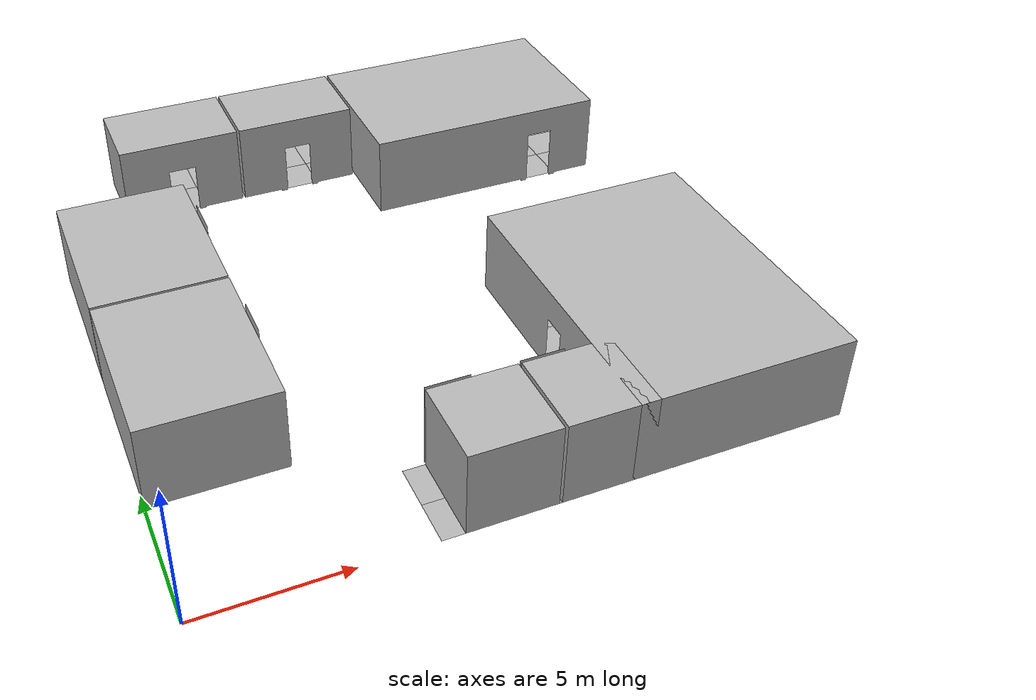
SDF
<sdf version="1.6">
 <world name="default">
  <model name="PublicBathroomA">
   <static>true</static>
   <pose>9.0
    3.0
    0
    0
    0
    0</pose>
   <link name="link">
    <collision name="right_of_door">
     <pose>0.63
        0.05
        1.5
        0
        0
        0</pose>
     <geometry><box><size>1.74
            0.1
            3.0</size></box></geometry>
    </collision>
    <collision name="left_of_door">
     <pose>-1.3800000000000001
        0.05
        1.5
        0
        0
        0</pose>
     <geometry><box><size>0.24
            0.1
            3.0</size></box></geometry>
    </collision>
    <collision name="right">
     <pose>1.55
        -1.5
        1.5
        0
        0
        0</pose>
     <geometry><box><size>0.1
            3.0
            3.0</size></box></geometry>
    </collision>
    <collision name="left">
     <pose>-1.55
        -1.5
        1.5
        0
        0
        0</pose>
     <geometry><box><size>0.1
            3.0
            3.0</size></box></geometry>
    </collision>
    <collision name="back">
     <pose>0.0
        -3.05
        1.5
        0
        0
        0</pose>
     <geometry><box><size>3.0
            0.1
            3.0</size></box></geometry>
    </collision>
    <visual name="visual">
     <geometry><mesh><uri>file://media/meshes/bathroom.obj</uri><scale>0.01 0.01 0.01</scale></mesh></geometry>
    </visual>
    <visual name="floor_0_-1">
     <pose>0.0
          -1.5
          0
          0
          0
          0</pose>
     <geometry><mesh><uri>file://media/meshes/tile.obj</uri><scale>0.01 0.01 0.01</scale></mesh></geometry>
    </visual>
    <visual name="floor_0_0">
     <geometry><mesh><uri>file://media/meshes/tile.obj</uri><scale>0.01 0.01 0.01</scale></mesh></geometry>
    </visual>
    <visual name="floor_1_-1">
     <pose>1.5
          -1.5
          0
          0
          0
          0</pose>
     <geometry><mesh><uri>file://media/meshes/tile.obj</uri><scale>0.01 0.01 0.01</scale></mesh></geometry>
    </visual>
    <visual name="floor_1_0">
     <pose>1.5
          0.0
          0
          0
          0
          0</pose>
     <geometry><mesh><uri>file://media/meshes/tile.obj</uri><scale>0.01 0.01 0.01</scale></mesh></geometry>
    </visual>
   </link>
  </model>
  <model name="PublicBathroomB">
   <static>true</static>
   <pose>12.1
    3.0
    0
    0
    0
    0</pose>
   <link name="link">
    <collision name="right_of_door">
     <pose>0.63
        0.05
        1.5
        0
        0
        0</pose>
     <geometry><box><size>1.74
            0.1
            3.0</size></box></geometry>
    </collision>
    <collision name="left_of_door">
     <pose>-1.3800000000000001
        0.05
        1.5
        0
        0
        0</pose>
     <geometry><box><size>0.24
            0.1
            3.0</size></box></geometry>
    </collision>
    <collision name="right">
     <pose>1.55
        -1.5
        1.5
        0
        0
        0</pose>
     <geometry><box><size>0.1
            3.0
            3.0</size></box></geometry>
    </collision>
    <collision name="left">
     <pose>-1.55
        -1.5
        1.5
        0
        0
        0</pose>
     <geometry><box><size>0.1
            3.0
            3.0</size></box></geometry>
    </collision>
    <collision name="back">
     <pose>0.0
        -3.05
        1.5
        0
        0
        0</pose>
     <geometry><box><size>3.0
            0.1
            3.0</size></box></geometry>
    </collision>
    <visual name="visual">
     <geometry><mesh><uri>file://media/meshes/bathroom.obj</uri><scale>0.01 0.01 0.01</scale></mesh></geometry>
    </visual>
    <visual name="floor_0_-1">
     <pose>0.0
          -1.5
          0
          0
          0
          0</pose>
     <geometry><mesh><uri>file://media/meshes/tile.obj</uri><scale>0.01 0.01 0.01</scale></mesh></geometry>
    </visual>
    <visual name="floor_0_0">
     <geometry><mesh><uri>file://media/meshes/tile.obj</uri><scale>0.01 0.01 0.01</scale></mesh></geometry>
    </visual>
    <visual name="floor_1_-1">
     <pose>1.5
          -1.5
          0
          0
          0
          0</pose>
     <geometry><mesh><uri>file://media/meshes/tile.obj</uri><scale>0.01 0.01 0.01</scale></mesh></geometry>
    </visual>
    <visual name="floor_1_0">
     <pose>1.5
          0.0
          0
          0
          0
          0</pose>
     <geometry><mesh><uri>file://media/meshes/tile.obj</uri><scale>0.01 0.01 0.01</scale></mesh></geometry>
    </visual>
   </link>
  </model>
  <model name="PublicCafe">
   <static>true</static>
   <pose>13.7
    6.0
    0
    0
    0
    1.5707963267948966</pose>
   <link name="link">
    <collision name="right_of_door">
     <pose>2.13
        0.05
        1.5
        0
        0
        0</pose>
     <geometry><box><size>4.74
            0.1
            3.0</size></box></geometry>
    </collision>
    <collision name="left_of_door">
     <pose>-3.63
        0.05
        1.5
        0
        0
        0</pose>
     <geometry><box><size>4.74
            0.1
            3.0</size></box></geometry>
    </collision>
    <collision name="right">
     <pose>4.55
        -3.75
        1.5
        0
        0
        0</pose>
     <geometry><box><size>0.1
            7.5
            3.0</size></box></geometry>
    </collision>
    <collision name="left">
     <pose>-6.05
        -3.75
        1.5
        0
        0
        0</pose>
     <geometry><box><size>0.1
            7.5
            3.0</size></box></geometry>
    </collision>
    <collision name="back">
     <pose>-0.75
        -7.55
        1.5
        0
        0
        0</pose>
     <geometry><box><size>10.5
            0.1
            3.0</size></box></geometry>
    </collision>
    <visual name="visual">
     <geometry>
      <mesh><uri>file://media/meshes/refreshment_area.obj</uri><scale>0.01 0.01 0.01</scale></mesh>
     </geometry>
    </visual>
    <visual name="floor_-3_-4">
     <pose>-4.5
          -6.0
          0
          0
          0
          0</pose>
     <geometry><mesh><uri>file://media/meshes/tile.obj</uri><scale>0.01 0.01 0.01</scale></mesh></geometry>
    </visual>
    <visual name="floor_-3_-3">
     <pose>-4.5
          -4.5
          0
          0
          0
          0</pose>
     <geometry><mesh><uri>file://media/meshes/tile.obj</uri><scale>0.01 0.01 0.01</scale></mesh></geometry>
    </visual>
    <visual name="floor_-3_-2">
     <pose>-4.5
          -3.0
          0
          0
          0
          0</pose>
     <geometry><mesh><uri>file://media/meshes/tile.obj</uri><scale>0.01 0.01 0.01</scale></mesh></geometry>
    </visual>
    <visual name="floor_-3_-1">
     <pose>-4.5
          -1.5
          0
          0
          0
          0</pose>
     <geometry><mesh><uri>file://media/meshes/tile.obj</uri><scale>0.01 0.01 0.01</scale></mesh></geometry>
    </visual>
    <visual name="floor_-3_0">
     <pose>-4.5
          0.0
          0
          0
          0
          0</pose>
     <geometry><mesh><uri>file://media/meshes/tile.obj</uri><scale>0.01 0.01 0.01</scale></mesh></geometry>
    </visual>
    <visual name="floor_-2_-4">
     <pose>-3.0
          -6.0
          0
          0
          0
          0</pose>
     <geometry><mesh><uri>file://media/meshes/tile.obj</uri><scale>0.01 0.01 0.01</scale></mesh></geometry>
    </visual>
    <visual name="floor_-2_-3">
     <pose>-3.0
          -4.5
          0
          0
          0
          0</pose>
     <geometry><mesh><uri>file://media/meshes/tile.obj</uri><scale>0.01 0.01 0.01</scale></mesh></geometry>
    </visual>
    <visual name="floor_-2_-2">
     <pose>-3.0
          -3.0
          0
          0
          0
          0</pose>
     <geometry><mesh><uri>file://media/meshes/tile.obj</uri><scale>0.01 0.01 0.01</scale></mesh></geometry>
    </visual>
    <visual name="floor_-2_-1">
     <pose>-3.0
          -1.5
          0
          0
          0
          0</pose>
     <geometry><mesh><uri>file://media/meshes/tile.obj</uri><scale>0.01 0.01 0.01</scale></mesh></geometry>
    </visual>
    <visual name="floor_-2_0">
     <pose>-3.0
          0.0
          0
          0
          0
          0</pose>
     <geometry><mesh><uri>file://media/meshes/tile.obj</uri><scale>0.01 0.01 0.01</scale></mesh></geometry>
    </visual>
    <visual name="floor_-1_-4">
     <pose>-1.5
          -6.0
          0
          0
          0
          0</pose>
     <geometry><mesh><uri>file://media/meshes/tile.obj</uri><scale>0.01 0.01 0.01</scale></mesh></geometry>
    </visual>
    <visual name="floor_-1_-3">
     <pose>-1.5
          -4.5
          0
          0
          0
          0</pose>
     <geometry><mesh><uri>file://media/meshes/tile.obj</uri><scale>0.01 0.01 0.01</scale></mesh></geometry>
    </visual>
    <visual name="floor_-1_-2">
     <pose>-1.5
          -3.0
          0
          0
          0
          0</pose>
     <geometry><mesh><uri>file://media/meshes/tile.obj</uri><scale>0.01 0.01 0.01</scale></mesh></geometry>
    </visual>
    <visual name="floor_-1_-1">
     <pose>-1.5
          -1.5
          0
          0
          0
          0</pose>
     <geometry><mesh><uri>file://media/meshes/tile.obj</uri><scale>0.01 0.01 0.01</scale></mesh></geometry>
    </visual>
    <visual name="floor_-1_0">
     <pose>-1.5
          0.0
          0
          0
          0
          0</pose>
     <geometry><mesh><uri>file://media/meshes/tile.obj</uri><scale>0.01 0.01 0.01</scale></mesh></geometry>
    </visual>
    <visual name="floor_0_-4">
     <pose>0.0
          -6.0
          0
          0
          0
          0</pose>
     <geometry><mesh><uri>file://media/meshes/tile.obj</uri><scale>0.01 0.01 0.01</scale></mesh></geometry>
    </visual>
    <visual name="floor_0_-3">
     <pose>0.0
          -4.5
          0
          0
          0
          0</pose>
     <geometry><mesh><uri>file://media/meshes/tile.obj</uri><scale>0.01 0.01 0.01</scale></mesh></geometry>
    </visual>
    <visual name="floor_0_-2">
     <pose>0.0
          -3.0
          0
          0
          0
          0</pose>
     <geometry><mesh><uri>file://media/meshes/tile.obj</uri><scale>0.01 0.01 0.01</scale></mesh></geometry>
    </visual>
    <visual name="floor_0_-1">
     <pose>0.0
          -1.5
          0
          0
          0
          0</pose>
     <geometry><mesh><uri>file://media/meshes/tile.obj</uri><scale>0.01 0.01 0.01</scale></mesh></geometry>
    </visual>
    <visual name="floor_0_0">
     <geometry><mesh><uri>file://media/meshes/tile.obj</uri><scale>0.01 0.01 0.01</scale></mesh></geometry>
    </visual>
    <visual name="floor_1_-4">
     <pose>1.5
          -6.0
          0
          0
          0
          0</pose>
     <geometry><mesh><uri>file://media/meshes/tile.obj</uri><scale>0.01 0.01 0.01</scale></mesh></geometry>
    </visual>
    <visual name="floor_1_-3">
     <pose>1.5
          -4.5
          0
          0
          0
          0</pose>
     <geometry><mesh><uri>file://media/meshes/tile.obj</uri><scale>0.01 0.01 0.01</scale></mesh></geometry>
    </visual>
    <visual name="floor_1_-2">
     <pose>1.5
          -3.0
          0
          0
          0
          0</pose>
     <geometry><mesh><uri>file://media/meshes/tile.obj</uri><scale>0.01 0.01 0.01</scale></mesh></geometry>
    </visual>
    <visual name="floor_1_-1">
     <pose>1.5
          -1.5
          0
          0
          0
          0</pose>
     <geometry><mesh><uri>file://media/meshes/tile.obj</uri><scale>0.01 0.01 0.01</scale></mesh></geometry>
    </visual>
    <visual name="floor_1_0">
     <pose>1.5
          0.0
          0
          0
          0
          0</pose>
     <geometry><mesh><uri>file://media/meshes/tile.obj</uri><scale>0.01 0.01 0.01</scale></mesh></geometry>
    </visual>
    <visual name="floor_2_-4">
     <pose>3.0
          -6.0
          0
          0
          0
          0</pose>
     <geometry><mesh><uri>file://media/meshes/tile.obj</uri><scale>0.01 0.01 0.01</scale></mesh></geometry>
    </visual>
    <visual name="floor_2_-3">
     <pose>3.0
          -4.5
          0
          0
          0
          0</pose>
     <geometry><mesh><uri>file://media/meshes/tile.obj</uri><scale>0.01 0.01 0.01</scale></mesh></geometry>
    </visual>
    <visual name="floor_2_-2">
     <pose>3.0
          -3.0
          0
          0
          0
          0</pose>
     <geometry><mesh><uri>file://media/meshes/tile.obj</uri><scale>0.01 0.01 0.01</scale></mesh></geometry>
    </visual>
    <visual name="floor_2_-1">
     <pose>3.0
          -1.5
          0
          0
          0
          0</pose>
     <geometry><mesh><uri>file://media/meshes/tile.obj</uri><scale>0.01 0.01 0.01</scale></mesh></geometry>
    </visual>
    <visual name="floor_2_0">
     <pose>3.0
          0.0
          0
          0
          0
          0</pose>
     <geometry><mesh><uri>file://media/meshes/tile.obj</uri><scale>0.01 0.01 0.01</scale></mesh></geometry>
    </visual>
    <visual name="floor_3_-4">
     <pose>4.5
          -6.0
          0
          0
          0
          0</pose>
     <geometry><mesh><uri>file://media/meshes/tile.obj</uri><scale>0.01 0.01 0.01</scale></mesh></geometry>
    </visual>
    <visual name="floor_3_-3">
     <pose>4.5
          -4.5
          0
          0
          0
          0</pose>
     <geometry><mesh><uri>file://media/meshes/tile.obj</uri><scale>0.01 0.01 0.01</scale></mesh></geometry>
    </visual>
    <visual name="floor_3_-2">
     <pose>4.5
          -3.0
          0
          0
          0
          0</pose>
     <geometry><mesh><uri>file://media/meshes/tile.obj</uri><scale>0.01 0.01 0.01</scale></mesh></geometry>
    </visual>
    <visual name="floor_3_-1">
     <pose>4.5
          -1.5
          0
          0
          0
          0</pose>
     <geometry><mesh><uri>file://media/meshes/tile.obj</uri><scale>0.01 0.01 0.01</scale></mesh></geometry>
    </visual>
    <visual name="floor_3_0">
     <pose>4.5
          0.0
          0
          0
          0
          0</pose>
     <geometry><mesh><uri>file://media/meshes/tile.obj</uri><scale>0.01 0.01 0.01</scale></mesh></geometry>
    </visual>
   </link>
  </model>
  <model name="PublicMeetingRoomA">
   <static>true</static>
   <pose>18.0
    16.5
    0
    0
    0
    3.141592653589793</pose>
   <link name="link">
    <collision name="right_of_door">
     <pose>2.88
        0.05
        1.5
        0
        0
        0</pose>
     <geometry><box><size>6.24
            0.1
            3.0</size></box></geometry>
    </collision>
    <collision name="left_of_door">
     <pose>-2.13
        0.05
        1.5
        0
        0
        0</pose>
     <geometry><box><size>1.74
            0.1
            3.0</size></box></geometry>
    </collision>
    <collision name="right">
     <pose>6.05
        -3.0
        1.5
        0
        0
        0</pose>
     <geometry><box><size>0.1
            6.0
            3.0</size></box></geometry>
    </collision>
    <collision name="left">
     <pose>-3.05
        -3.0
        1.5
        0
        0
        0</pose>
     <geometry><box><size>0.1
            6.0
            3.0</size></box></geometry>
    </collision>
    <collision name="back">
     <pose>1.5
        -6.05
        1.5
        0
        0
        0</pose>
     <geometry><box><size>9.0
            0.1
            3.0</size></box></geometry>
    </collision>
    <visual name="visual">
     <geometry>
      <mesh><uri>file://media/meshes/meeting_room_large.obj</uri><scale>0.01 0.01 0.01</scale></mesh>
     </geometry>
    </visual>
    <visual name="floor_-1_-3">
     <pose>-1.5
          -4.5
          0
          0
          0
          0</pose>
     <geometry><mesh><uri>file://media/meshes/carpet.obj</uri><scale>0.01 0.01 0.01</scale></mesh></geometry>
    </visual>
    <visual name="floor_-1_-2">
     <pose>-1.5
          -3.0
          0
          0
          0
          0</pose>
     <geometry><mesh><uri>file://media/meshes/carpet.obj</uri><scale>0.01 0.01 0.01</scale></mesh></geometry>
    </visual>
    <visual name="floor_-1_-1">
     <pose>-1.5
          -1.5
          0
          0
          0
          0</pose>
     <geometry><mesh><uri>file://media/meshes/carpet.obj</uri><scale>0.01 0.01 0.01</scale></mesh></geometry>
    </visual>
    <visual name="floor_-1_0">
     <pose>-1.5
          0.0
          0
          0
          0
          0</pose>
     <geometry><mesh><uri>file://media/meshes/carpet.obj</uri><scale>0.01 0.01 0.01</scale></mesh></geometry>
    </visual>
    <visual name="floor_0_-3">
     <pose>0.0
          -4.5
          0
          0
          0
          0</pose>
     <geometry><mesh><uri>file://media/meshes/carpet.obj</uri><scale>0.01 0.01 0.01</scale></mesh></geometry>
    </visual>
    <visual name="floor_0_-2">
     <pose>0.0
          -3.0
          0
          0
          0
          0</pose>
     <geometry><mesh><uri>file://media/meshes/carpet.obj</uri><scale>0.01 0.01 0.01</scale></mesh></geometry>
    </visual>
    <visual name="floor_0_-1">
     <pose>0.0
          -1.5
          0
          0
          0
          0</pose>
     <geometry><mesh><uri>file://media/meshes/carpet.obj</uri><scale>0.01 0.01 0.01</scale></mesh></geometry>
    </visual>
    <visual name="floor_0_0">
     <geometry><mesh><uri>file://media/meshes/carpet.obj</uri><scale>0.01 0.01 0.01</scale></mesh></geometry>
    </visual>
    <visual name="floor_1_-3">
     <pose>1.5
          -4.5
          0
          0
          0
          0</pose>
     <geometry><mesh><uri>file://media/meshes/carpet.obj</uri><scale>0.01 0.01 0.01</scale></mesh></geometry>
    </visual>
    <visual name="floor_1_-2">
     <pose>1.5
          -3.0
          0
          0
          0
          0</pose>
     <geometry><mesh><uri>file://media/meshes/carpet.obj</uri><scale>0.01 0.01 0.01</scale></mesh></geometry>
    </visual>
    <visual name="floor_1_-1">
     <pose>1.5
          -1.5
          0
          0
          0
          0</pose>
     <geometry><mesh><uri>file://media/meshes/carpet.obj</uri><scale>0.01 0.01 0.01</scale></mesh></geometry>
    </visual>
    <visual name="floor_1_0">
     <pose>1.5
          0.0
          0
          0
          0
          0</pose>
     <geometry><mesh><uri>file://media/meshes/carpet.obj</uri><scale>0.01 0.01 0.01</scale></mesh></geometry>
    </visual>
    <visual name="floor_2_-3">
     <pose>3.0
          -4.5
          0
          0
          0
          0</pose>
     <geometry><mesh><uri>file://media/meshes/carpet.obj</uri><scale>0.01 0.01 0.01</scale></mesh></geometry>
    </visual>
    <visual name="floor_2_-2">
     <pose>3.0
          -3.0
          0
          0
          0
          0</pose>
     <geometry><mesh><uri>file://media/meshes/carpet.obj</uri><scale>0.01 0.01 0.01</scale></mesh></geometry>
    </visual>
    <visual name="floor_2_-1">
     <pose>3.0
          -1.5
          0
          0
          0
          0</pose>
     <geometry><mesh><uri>file://media/meshes/carpet.obj</uri><scale>0.01 0.01 0.01</scale></mesh></geometry>
    </visual>
    <visual name="floor_2_0">
     <pose>3.0
          0.0
          0
          0
          0
          0</pose>
     <geometry><mesh><uri>file://media/meshes/carpet.obj</uri><scale>0.01 0.01 0.01</scale></mesh></geometry>
    </visual>
    <visual name="floor_3_-3">
     <pose>4.5
          -4.5
          0
          0
          0
          0</pose>
     <geometry><mesh><uri>file://media/meshes/carpet.obj</uri><scale>0.01 0.01 0.01</scale></mesh></geometry>
    </visual>
    <visual name="floor_3_-2">
     <pose>4.5
          -3.0
          0
          0
          0
          0</pose>
     <geometry><mesh><uri>file://media/meshes/carpet.obj</uri><scale>0.01 0.01 0.01</scale></mesh></geometry>
    </visual>
    <visual name="floor_3_-1">
     <pose>4.5
          -1.5
          0
          0
          0
          0</pose>
     <geometry><mesh><uri>file://media/meshes/carpet.obj</uri><scale>0.01 0.01 0.01</scale></mesh></geometry>
    </visual>
    <visual name="floor_3_0">
     <pose>4.5
          0.0
          0
          0
          0
          0</pose>
     <geometry><mesh><uri>file://media/meshes/carpet.obj</uri><scale>0.01 0.01 0.01</scale></mesh></geometry>
    </visual>
    <visual name="floor_4_-3">
     <pose>6.0
          -4.5
          0
          0
          0
          0</pose>
     <geometry><mesh><uri>file://media/meshes/carpet.obj</uri><scale>0.01 0.01 0.01</scale></mesh></geometry>
    </visual>
    <visual name="floor_4_-2">
     <pose>6.0
          -3.0
          0
          0
          0
          0</pose>
     <geometry><mesh><uri>file://media/meshes/carpet.obj</uri><scale>0.01 0.01 0.01</scale></mesh></geometry>
    </visual>
    <visual name="floor_4_-1">
     <pose>6.0
          -1.5
          0
          0
          0
          0</pose>
     <geometry><mesh><uri>file://media/meshes/carpet.obj</uri><scale>0.01 0.01 0.01</scale></mesh></geometry>
    </visual>
    <visual name="floor_4_0">
     <pose>6.0
          0.0
          0
          0
          0
          0</pose>
     <geometry><mesh><uri>file://media/meshes/carpet.obj</uri><scale>0.01 0.01 0.01</scale></mesh></geometry>
    </visual>
   </link>
  </model>
  <model name="PublicMeetingRoomB">
   <static>true</static>
   <pose>4.5
    7.5
    0
    0
    0
    -1.5707963267948966</pose>
   <link name="link">
    <collision name="right_of_door">
     <pose>1.3800000000000001
        0.05
        1.5
        0
        0
        0</pose>
     <geometry><box><size>3.24
            0.1
            3.0</size></box></geometry>
    </collision>
    <collision name="left_of_door">
     <pose>-2.13
        0.05
        1.5
        0
        0
        0</pose>
     <geometry><box><size>1.74
            0.1
            3.0</size></box></geometry>
    </collision>
    <collision name="right">
     <pose>3.05
        -2.25
        1.5
        0
        0
        0</pose>
     <geometry><box><size>0.1
            4.5
            3.0</size></box></geometry>
    </collision>
    <collision name="left">
     <pose>-3.05
        -2.25
        1.5
        0
        0
        0</pose>
     <geometry><box><size>0.1
            4.5
            3.0</size></box></geometry>
    </collision>
    <collision name="back">
     <pose>0.0
        -4.55
        1.5
        0
        0
        0</pose>
     <geometry><box><size>6.0
            0.1
            3.0</size></box></geometry>
    </collision>
    <visual name="visual">
     <geometry>
      <mesh><uri>file://media/meshes/meeting_room_small.obj</uri><scale>0.01 0.01 0.01</scale></mesh>
     </geometry>
    </visual>
    <visual name="floor_-1_-2">
     <pose>-1.5
          -3.0
          0
          0
          0
          0</pose>
     <geometry><mesh><uri>file://media/meshes/carpet.obj</uri><scale>0.01 0.01 0.01</scale></mesh></geometry>
    </visual>
    <visual name="floor_-1_-1">
     <pose>-1.5
          -1.5
          0
          0
          0
          0</pose>
     <geometry><mesh><uri>file://media/meshes/carpet.obj</uri><scale>0.01 0.01 0.01</scale></mesh></geometry>
    </visual>
    <visual name="floor_-1_0">
     <pose>-1.5
          0.0
          0
          0
          0
          0</pose>
     <geometry><mesh><uri>file://media/meshes/carpet.obj</uri><scale>0.01 0.01 0.01</scale></mesh></geometry>
    </visual>
    <visual name="floor_0_-2">
     <pose>0.0
          -3.0
          0
          0
          0
          0</pose>
     <geometry><mesh><uri>file://media/meshes/carpet.obj</uri><scale>0.01 0.01 0.01</scale></mesh></geometry>
    </visual>
    <visual name="floor_0_-1">
     <pose>0.0
          -1.5
          0
          0
          0
          0</pose>
     <geometry><mesh><uri>file://media/meshes/carpet.obj</uri><scale>0.01 0.01 0.01</scale></mesh></geometry>
    </visual>
    <visual name="floor_0_0">
     <geometry><mesh><uri>file://media/meshes/carpet.obj</uri><scale>0.01 0.01 0.01</scale></mesh></geometry>
    </visual>
    <visual name="floor_1_-2">
     <pose>1.5
          -3.0
          0
          0
          0
          0</pose>
     <geometry><mesh><uri>file://media/meshes/carpet.obj</uri><scale>0.01 0.01 0.01</scale></mesh></geometry>
    </visual>
    <visual name="floor_1_-1">
     <pose>1.5
          -1.5
          0
          0
          0
          0</pose>
     <geometry><mesh><uri>file://media/meshes/carpet.obj</uri><scale>0.01 0.01 0.01</scale></mesh></geometry>
    </visual>
    <visual name="floor_1_0">
     <pose>1.5
          0.0
          0
          0
          0
          0</pose>
     <geometry><mesh><uri>file://media/meshes/carpet.obj</uri><scale>0.01 0.01 0.01</scale></mesh></geometry>
    </visual>
    <visual name="floor_2_-2">
     <pose>3.0
          -3.0
          0
          0
          0
          0</pose>
     <geometry><mesh><uri>file://media/meshes/carpet.obj</uri><scale>0.01 0.01 0.01</scale></mesh></geometry>
    </visual>
    <visual name="floor_2_-1">
     <pose>3.0
          -1.5
          0
          0
          0
          0</pose>
     <geometry><mesh><uri>file://media/meshes/carpet.obj</uri><scale>0.01 0.01 0.01</scale></mesh></geometry>
    </visual>
    <visual name="floor_2_0">
     <pose>3.0
          0.0
          0
          0
          0
          0</pose>
     <geometry><mesh><uri>file://media/meshes/carpet.obj</uri><scale>0.01 0.01 0.01</scale></mesh></geometry>
    </visual>
   </link>
  </model>
  <model name="PublicMeetingRoomC">
   <static>true</static>
   <pose>4.5
    13.6
    0
    0
    0
    -1.5707963267948966</pose>
   <link name="link">
    <collision name="right_of_door">
     <pose>1.3800000000000001
        0.05
        1.5
        0
        0
        0</pose>
     <geometry><box><size>3.24
            0.1
            3.0</size></box></geometry>
    </collision>
    <collision name="left_of_door">
     <pose>-2.13
        0.05
        1.5
        0
        0
        0</pose>
     <geometry><box><size>1.74
            0.1
            3.0</size></box></geometry>
    </collision>
    <collision name="right">
     <pose>3.05
        -2.25
        1.5
        0
        0
        0</pose>
     <geometry><box><size>0.1
            4.5
            3.0</size></box></geometry>
    </collision>
    <collision name="left">
     <pose>-3.05
        -2.25
        1.5
        0
        0
        0</pose>
     <geometry><box><size>0.1
            4.5
            3.0</size></box></geometry>
    </collision>
    <collision name="back">
     <pose>0.0
        -4.55
        1.5
        0
        0
        0</pose>
     <geometry><box><size>6.0
            0.1
            3.0</size></box></geometry>
    </collision>
    <visual name="visual">
     <geometry>
      <mesh><uri>file://media/meshes/meeting_room_small.obj</uri><scale>0.01 0.01 0.01</scale></mesh>
     </geometry>
    </visual>
    <visual name="floor_-1_-2">
     <pose>-1.5
          -3.0
          0
          0
          0
          0</pose>
     <geometry><mesh><uri>file://media/meshes/carpet.obj</uri><scale>0.01 0.01 0.01</scale></mesh></geometry>
    </visual>
    <visual name="floor_-1_-1">
     <pose>-1.5
          -1.5
          0
          0
          0
          0</pose>
     <geometry><mesh><uri>file://media/meshes/carpet.obj</uri><scale>0.01 0.01 0.01</scale></mesh></geometry>
    </visual>
    <visual name="floor_-1_0">
     <pose>-1.5
          0.0
          0
          0
          0
          0</pose>
     <geometry><mesh><uri>file://media/meshes/carpet.obj</uri><scale>0.01 0.01 0.01</scale></mesh></geometry>
    </visual>
    <visual name="floor_0_-2">
     <pose>0.0
          -3.0
          0
          0
          0
          0</pose>
     <geometry><mesh><uri>file://media/meshes/carpet.obj</uri><scale>0.01 0.01 0.01</scale></mesh></geometry>
    </visual>
    <visual name="floor_0_-1">
     <pose>0.0
          -1.5
          0
          0
          0
          0</pose>
     <geometry><mesh><uri>file://media/meshes/carpet.obj</uri><scale>0.01 0.01 0.01</scale></mesh></geometry>
    </visual>
    <visual name="floor_0_0">
     <geometry><mesh><uri>file://media/meshes/carpet.obj</uri><scale>0.01 0.01 0.01</scale></mesh></geometry>
    </visual>
    <visual name="floor_1_-2">
     <pose>1.5
          -3.0
          0
          0
          0
          0</pose>
     <geometry><mesh><uri>file://media/meshes/carpet.obj</uri><scale>0.01 0.01 0.01</scale></mesh></geometry>
    </visual>
    <visual name="floor_1_-1">
     <pose>1.5
          -1.5
          0
          0
          0
          0</pose>
     <geometry><mesh><uri>file://media/meshes/carpet.obj</uri><scale>0.01 0.01 0.01</scale></mesh></geometry>
    </visual>
    <visual name="floor_1_0">
     <pose>1.5
          0.0
          0
          0
          0
          0</pose>
     <geometry><mesh><uri>file://media/meshes/carpet.obj</uri><scale>0.01 0.01 0.01</scale></mesh></geometry>
    </visual>
    <visual name="floor_2_-2">
     <pose>3.0
          -3.0
          0
          0
          0
          0</pose>
     <geometry><mesh><uri>file://media/meshes/carpet.obj</uri><scale>0.01 0.01 0.01</scale></mesh></geometry>
    </visual>
    <visual name="floor_2_-1">
     <pose>3.0
          -1.5
          0
          0
          0
          0</pose>
     <geometry><mesh><uri>file://media/meshes/carpet.obj</uri><scale>0.01 0.01 0.01</scale></mesh></geometry>
    </visual>
    <visual name="floor_2_0">
     <pose>3.0
          0.0
          0
          0
          0
          0</pose>
     <geometry><mesh><uri>file://media/meshes/carpet.obj</uri><scale>0.01 0.01 0.01</scale></mesh></geometry>
    </visual>
   </link>
  </model>
  <model name="PublicMeetingRoomD">
   <static>true</static>
   <pose>8.9
    19.5
    0
    0
    0
    3.141592653589793</pose>
   <link name="link">
    <collision name="right_of_door">
     <pose>0.63
        0.05
        1.5
        0
        0
        0</pose>
     <geometry><box><size>1.74
            0.1
            3.0</size></box></geometry>
    </collision>
    <collision name="left_of_door">
     <pose>-2.13
        0.05
        1.5
        0
        0
        0</pose>
     <geometry><box><size>1.74
            0.1
            3.0</size></box></geometry>
    </collision>
    <collision name="right">
     <pose>1.55
        -1.5
        1.5
        0
        0
        0</pose>
     <geometry><box><size>0.1
            3.0
            3.0</size></box></geometry>
    </collision>
    <collision name="left">
     <pose>-3.05
        -1.5
        1.5
        0
        0
        0</pose>
     <geometry><box><size>0.1
            3.0
            3.0</size></box></geometry>
    </collision>
    <collision name="back">
     <pose>-0.75
        -3.05
        1.5
        0
        0
        0</pose>
     <geometry><box><size>4.5
            0.1
            3.0</size></box></geometry>
    </collision>
    <visual name="visual">
     <geometry><mesh><uri>file://media/meshes/office_small.obj</uri><scale>0.01 0.01 0.01</scale></mesh></geometry>
    </visual>
    <visual name="floor_-1_-1">
     <pose>-1.5
          -1.5
          0
          0
          0
          0</pose>
     <geometry><mesh><uri>file://media/meshes/carpet.obj</uri><scale>0.01 0.01 0.01</scale></mesh></geometry>
    </visual>
    <visual name="floor_-1_0">
     <pose>-1.5
          0.0
          0
          0
          0
          0</pose>
     <geometry><mesh><uri>file://media/meshes/carpet.obj</uri><scale>0.01 0.01 0.01</scale></mesh></geometry>
    </visual>
    <visual name="floor_0_-1">
     <pose>0.0
          -1.5
          0
          0
          0
          0</pose>
     <geometry><mesh><uri>file://media/meshes/carpet.obj</uri><scale>0.01 0.01 0.01</scale></mesh></geometry>
    </visual>
    <visual name="floor_0_0">
     <geometry><mesh><uri>file://media/meshes/carpet.obj</uri><scale>0.01 0.01 0.01</scale></mesh></geometry>
    </visual>
    <visual name="floor_1_-1">
     <pose>1.5
          -1.5
          0
          0
          0
          0</pose>
     <geometry><mesh><uri>file://media/meshes/carpet.obj</uri><scale>0.01 0.01 0.01</scale></mesh></geometry>
    </visual>
    <visual name="floor_1_0">
     <pose>1.5
          0.0
          0
          0
          0
          0</pose>
     <geometry><mesh><uri>file://media/meshes/carpet.obj</uri><scale>0.01 0.01 0.01</scale></mesh></geometry>
    </visual>
   </link>
  </model>
  <model name="PublicMeetingRoomE">
   <static>true</static>
   <pose>4.3
    19.5
    0
    0
    0
    3.141592653589793</pose>
   <link name="link">
    <collision name="right_of_door">
     <pose>0.63
        0.05
        1.5
        0
        0
        0</pose>
     <geometry><box><size>1.74
            0.1
            3.0</size></box></geometry>
    </collision>
    <collision name="left_of_door">
     <pose>-2.13
        0.05
        1.5
        0
        0
        0</pose>
     <geometry><box><size>1.74
            0.1
            3.0</size></box></geometry>
    </collision>
    <collision name="right">
     <pose>1.55
        -1.5
        1.5
        0
        0
        0</pose>
     <geometry><box><size>0.1
            3.0
            3.0</size></box></geometry>
    </collision>
    <collision name="left">
     <pose>-3.05
        -1.5
        1.5
        0
        0
        0</pose>
     <geometry><box><size>0.1
            3.0
            3.0</size></box></geometry>
    </collision>
    <collision name="back">
     <pose>-0.75
        -3.05
        1.5
        0
        0
        0</pose>
     <geometry><box><size>4.5
            0.1
            3.0</size></box></geometry>
    </collision>
    <visual name="visual">
     <geometry><mesh><uri>file://media/meshes/office_small.obj</uri><scale>0.01 0.01 0.01</scale></mesh></geometry>
    </visual>
    <visual name="floor_-1_-1">
     <pose>-1.5
          -1.5
          0
          0
          0
          0</pose>
     <geometry><mesh><uri>file://media/meshes/carpet.obj</uri><scale>0.01 0.01 0.01</scale></mesh></geometry>
    </visual>
    <visual name="floor_-1_0">
     <pose>-1.5
          0.0
          0
          0
          0
          0</pose>
     <geometry><mesh><uri>file://media/meshes/carpet.obj</uri><scale>0.01 0.01 0.01</scale></mesh></geometry>
    </visual>
    <visual name="floor_0_-1">
     <pose>0.0
          -1.5
          0
          0
          0
          0</pose>
     <geometry><mesh><uri>file://media/meshes/carpet.obj</uri><scale>0.01 0.01 0.01</scale></mesh></geometry>
    </visual>
    <visual name="floor_0_0">
     <geometry><mesh><uri>file://media/meshes/carpet.obj</uri><scale>0.01 0.01 0.01</scale></mesh></geometry>
    </visual>
    <visual name="floor_1_-1">
     <pose>1.5
          -1.5
          0
          0
          0
          0</pose>
     <geometry><mesh><uri>file://media/meshes/carpet.obj</uri><scale>0.01 0.01 0.01</scale></mesh></geometry>
    </visual>
    <visual name="floor_1_0">
     <pose>1.5
          0.0
          0
          0
          0
          0</pose>
     <geometry><mesh><uri>file://media/meshes/carpet.obj</uri><scale>0.01 0.01 0.01</scale></mesh></geometry>
    </visual>
   </link>
  </model>
 </world>
</sdf>
